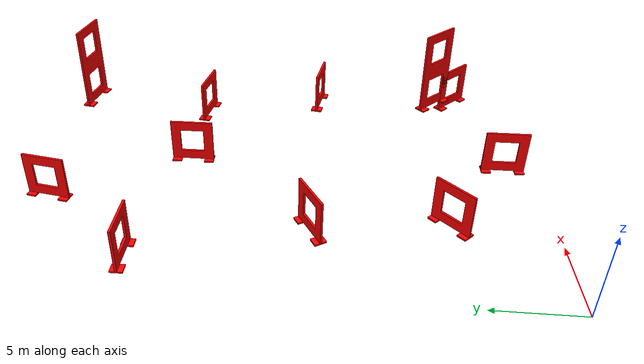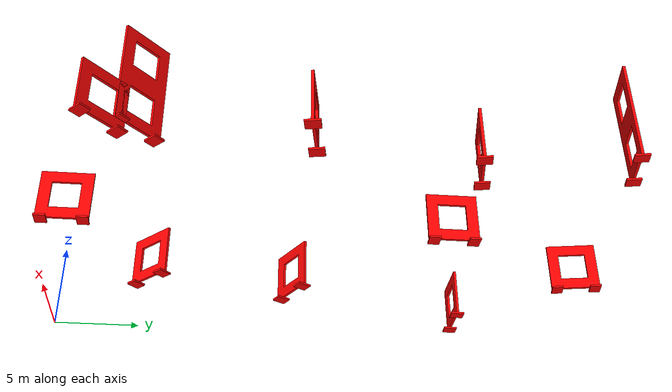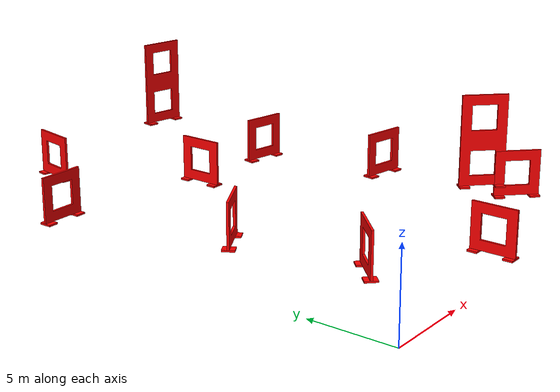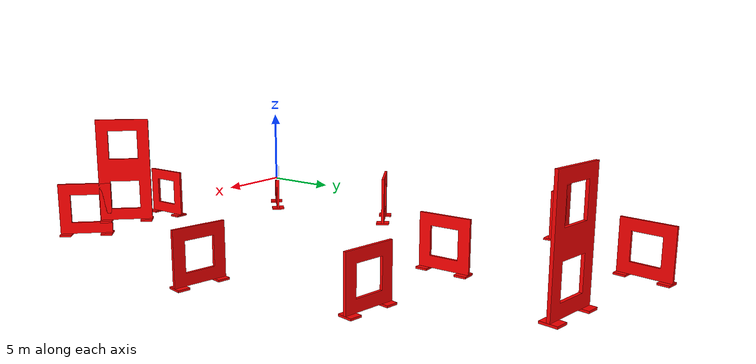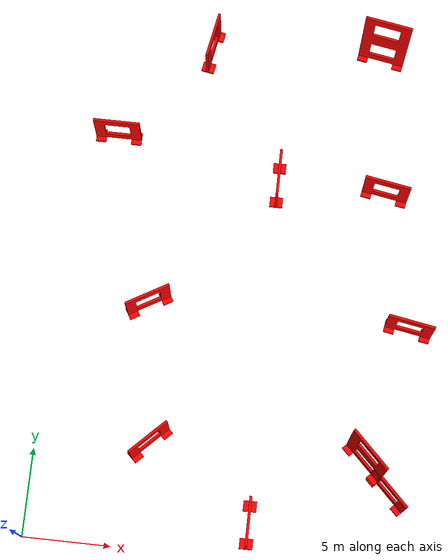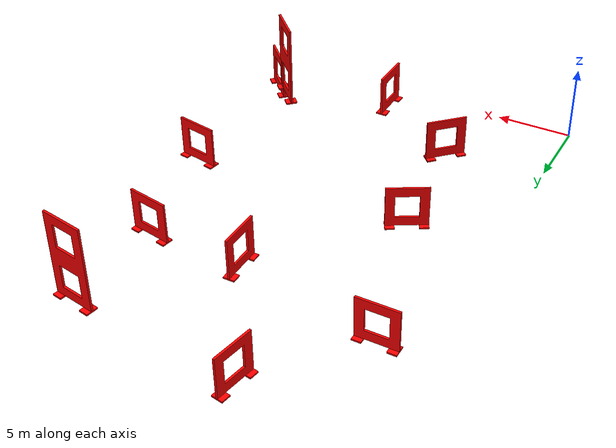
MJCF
<mujoco model="dreamer_quad_minimal">
    <compiler angle="radian" meshdir="." />

    <visual>
        <headlight ambient="1 1 1"/>
        <global offwidth="64" offheight="64"/>
    </visual>

    <asset>
        <!-- Gate meshes (no textures for binary segmentation) -->
        <mesh name="single_gate_mesh_0" file="models/a2rl_single_gate/a2rl_single_gate_0.obj"/>
        <mesh name="single_gate_mesh_1" file="models/a2rl_single_gate/a2rl_single_gate_1.obj"/>
        <mesh name="double_gate_mesh_0" file="models/a2rl_double_gate/a2rl_double_gate_0.obj"/>
        <mesh name="double_gate_mesh_1" file="models/a2rl_double_gate/a2rl_double_gate_1.obj"/>
    </asset>

    <worldbody>
        <!-- Minimal camera body (just for positioning, no visual geometry) -->
        <body name="camera" pos="0 0 1">
            <freejoint/>
            <!-- Minimal mass for MuJoCo physics (required for freejoint) -->
            <inertial pos="0 0 0" mass="0.01" diaginertia="0.001 0.001 0.001"/>
            <!-- FPV Camera matching quad_race_env.py defaults:
                 offset: [-0.02, 0, 0.05], pitch: 40°
                 fovy: 104° (matches intrinsic matrix f=25 for 64x64, per SkyDreamer paper) -->
            <camera name="fpv" pos="-0.02 0 0.05" xyaxes="0 -1 0 -0.643 0 0.766" fovy="104" mode="fixed"/>
        </body>

        <!-- SINGLE GATES -->
        <!-- Gate 0: [12.5, 2, 1.25], yaw=180° -->
        <body name="gate_0" pos="12.5 2 1.25" quat="0.0 0.0 0.0 1.0">
            <geom name="gate_mesh_0_0" type="mesh" mesh="single_gate_mesh_1" contype="0" conaffinity="0" rgba="1 0 0 1"/>
            <geom name="gate_mesh_0_1" type="mesh" mesh="single_gate_mesh_0" contype="0" conaffinity="0" rgba="1 0 0 1"/>
        </body>

        <!-- Gate 1: [6.5, 6, 1.25], yaw=135° -->
        <body name="gate_1" pos="6.5 6 1.25" quat="0.38268343 0.0 0.0 0.92387953">
            <geom name="gate_mesh_1_0" type="mesh" mesh="single_gate_mesh_0" contype="0" conaffinity="0" rgba="1 0 0 1"/>
            <geom name="gate_mesh_1_1" type="mesh" mesh="single_gate_mesh_1" contype="0" conaffinity="0" rgba="1 0 0 1"/>
        </body>

        <!-- Gate 2: [5.5, 14, 1.25], yaw=120° -->
        <body name="gate_2" pos="5.5 14 1.25" quat="0.5 0.0 0.0 0.8660254">
            <geom name="gate_mesh_2_0" type="mesh" mesh="single_gate_mesh_0" contype="0" conaffinity="0" rgba="1 0 0 1"/>
            <geom name="gate_mesh_2_1" type="mesh" mesh="single_gate_mesh_1" contype="0" conaffinity="0" rgba="1 0 0 1"/>
        </body>

        <!-- Gate 3: [2.5, 24, 1.25], yaw=90° -->
        <body name="gate_3" pos="2.5 24 1.25" quat="0.70710678 0.0 0.0 0.70710678">
            <geom name="gate_mesh_3_0" type="mesh" mesh="single_gate_mesh_0" contype="0" conaffinity="0" rgba="1 0 0 1"/>
            <geom name="gate_mesh_3_1" type="mesh" mesh="single_gate_mesh_1" contype="0" conaffinity="0" rgba="1 0 0 1"/>
        </body>

        <!-- Gate 4: [7.5, 30, 1.25], yaw=350° -->
        <body name="gate_4" pos="7.5 30 1.25" quat="-0.99619470 0.0 0.0 0.08715574">
            <geom name="gate_mesh_4_0" type="mesh" mesh="single_gate_mesh_0" contype="0" conaffinity="0" rgba="1 0 0 1"/>
            <geom name="gate_mesh_4_1" type="mesh" mesh="single_gate_mesh_1" contype="0" conaffinity="0" rgba="1 0 0 1"/>
        </body>

        <!-- Gate 5: [12.2, 22, 1.25], yaw=0° -->
        <body name="gate_5" pos="12.2 22 1.25" quat="1.0 0.0 0.0 0.0">
            <geom name="gate_mesh_5_0" type="mesh" mesh="single_gate_mesh_0" contype="0" conaffinity="0" rgba="1 0 0 1"/>
            <geom name="gate_mesh_5_1" type="mesh" mesh="single_gate_mesh_1" contype="0" conaffinity="0" rgba="1 0 0 1"/>
        </body>

        <!-- DOUBLE GATES -->
        <!-- Double gate 6&7: [17.5, 30], avg_z=2.6, base_yaw=260°, adjusted_yaw=260°+90°=350° -->
        <body name="gate_6" pos="17.5 30 2.6" quat="-0.99619470 0.0 0.0 0.08715574">
            <geom name="gate_mesh_6_0" type="mesh" mesh="double_gate_mesh_0" contype="0" conaffinity="0" rgba="1 0 0 1"/>
            <geom name="gate_mesh_6_1" type="mesh" mesh="double_gate_mesh_1" contype="0" conaffinity="0" rgba="1 0 0 1"/>
        </body>

        <!-- Gate 8: [18.5, 22, 1.25], yaw=80° -->
        <body name="gate_8" pos="18.5 22 1.25" quat="0.76604444 0.0 0.0 0.64278761">
            <geom name="gate_mesh_8_0" type="mesh" mesh="single_gate_mesh_0" contype="0" conaffinity="0" rgba="1 0 0 1"/>
            <geom name="gate_mesh_8_1" type="mesh" mesh="single_gate_mesh_1" contype="0" conaffinity="0" rgba="1 0 0 1"/>
        </body>

        <!-- Gate 9: [20.5, 14, 1.25], yaw=260° -->
        <body name="gate_9" pos="20.5 14 1.25" quat="-0.64278761 0.0 0.0 0.76604444">
            <geom name="gate_mesh_9_0" type="mesh" mesh="single_gate_mesh_0" contype="0" conaffinity="0" rgba="1 0 0 1"/>
            <geom name="gate_mesh_9_1" type="mesh" mesh="single_gate_mesh_1" contype="0" conaffinity="0" rgba="1 0 0 1"/>
        </body>

        <!-- Double gate 10&12: [18.5, 6], avg_z=2.6, base_yaw=225°, adjusted_yaw=225°+90°=315° -->
        <body name="gate_10" pos="18.5 6 2.6" quat="-0.92387953 0.0 0.0 0.38268343">
            <geom name="gate_mesh_10_0" type="mesh" mesh="double_gate_mesh_0" contype="0" conaffinity="0" rgba="1 0 0 1"/>
            <geom name="gate_mesh_10_1" type="mesh" mesh="double_gate_mesh_1" contype="0" conaffinity="0" rgba="1 0 0 1"/>
        </body>

        <!-- Gate 11: [20, 4.5, 1.9], yaw=45° -->
        <body name="gate_11" pos="20 4.5 1.9" quat="0.92387953 0.0 0.0 0.38268343">
            <geom name="gate_mesh_11_0" type="mesh" mesh="single_gate_mesh_0" contype="0" conaffinity="0" rgba="1 0 0 1"/>
            <geom name="gate_mesh_11_1" type="mesh" mesh="single_gate_mesh_1" contype="0" conaffinity="0" rgba="1 0 0 1"/>
        </body>
    </worldbody>
</mujoco>
